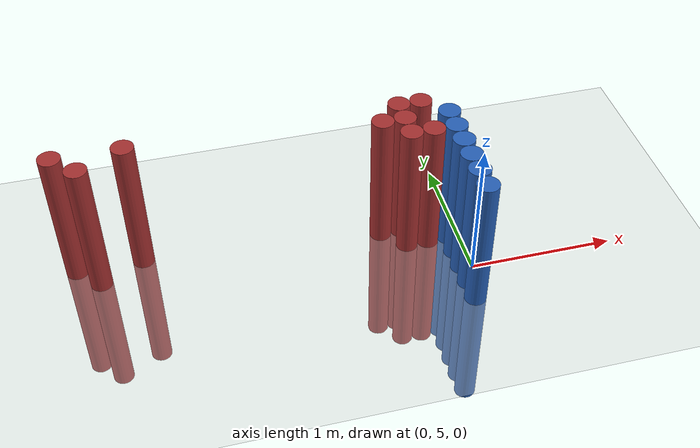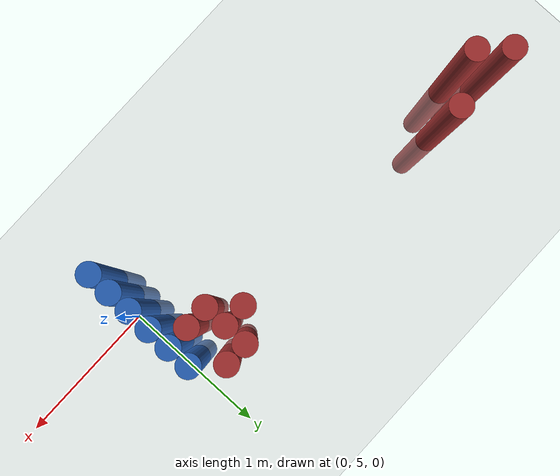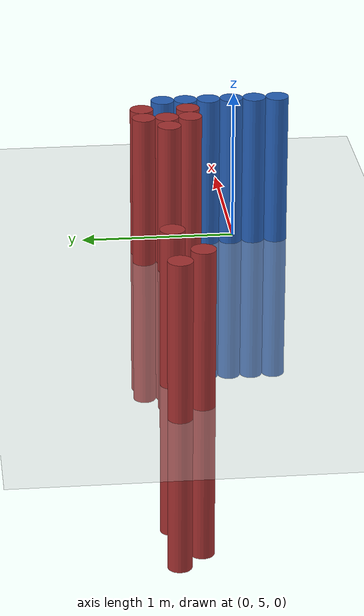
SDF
<sdf version="1.6">
 <world name="default">
  <model name="ground_plane">
   <static>1</static>
   <link name="link">
    <collision name="collision">
     <geometry><plane><normal>0 0 1</normal><size>100 100</size></plane></geometry>
     <surface><friction><ode><mu>100</mu><mu2>50</mu2></ode></friction></surface>
    </collision>
    <visual name="visual">
     <cast_shadows>0</cast_shadows>
     <geometry><plane><normal>0 0 1</normal><size>100 100</size></plane></geometry>
     <material>
      <script><uri>file://media/materials/scripts/gazebo.material</uri><name>Gazebo/Grey</name></script>
     </material>
    </visual>
   </link>
  </model>
  <model name="unit_cylinder_90">
   <static>1</static>
   <pose>-0.075000 4.725000 0.000000 0.000000 0.000000 0.000000</pose>
   <link name="link">
    <inertial>
     <mass>1</mass>
     <inertia><ixx>0.145833</ixx><ixy>0</ixy><ixz>0</ixz><iyy>0.145833</iyy><iyz>0</iyz><izz>0.125</izz></inertia>
    </inertial>
    <collision name="collision">
     <geometry><cylinder><radius>0.075000</radius><length>2</length></cylinder></geometry>
    </collision>
    <visual name="visual">
     <geometry><cylinder><radius>0.075000</radius><length>2</length></cylinder></geometry>
     <material>
      <ambient>0.152000 0.379000 0.720000 1</ambient>
      <diffuse>0.152000 0.379000 0.720000 1</diffuse>
     </material>
     <material>
      <script><name>Gazebo/Grey</name><uri>file://media/materials/scripts/gazebo.material</uri></script>
     </material>
    </visual>
   </link>
  </model>
  <model name="unit_cylinder_92">
   <static>1</static>
   <pose>-0.075000 4.875000 0.000000 0.000000 0.000000 0.000000</pose>
   <link name="link">
    <inertial>
     <mass>1</mass>
     <inertia><ixx>0.145833</ixx><ixy>0</ixy><ixz>0</ixz><iyy>0.145833</iyy><iyz>0</iyz><izz>0.125</izz></inertia>
    </inertial>
    <collision name="collision">
     <geometry><cylinder><radius>0.075000</radius><length>2</length></cylinder></geometry>
    </collision>
    <visual name="visual">
     <geometry><cylinder><radius>0.075000</radius><length>2</length></cylinder></geometry>
     <material>
      <ambient>0.152000 0.379000 0.720000 1</ambient>
      <diffuse>0.152000 0.379000 0.720000 1</diffuse>
     </material>
     <material>
      <script><name>Gazebo/Grey</name><uri>file://media/materials/scripts/gazebo.material</uri></script>
     </material>
    </visual>
   </link>
  </model>
  <model name="unit_cylinder_94">
   <static>1</static>
   <pose>-0.075000 5.025000 0.000000 0.000000 0.000000 0.000000</pose>
   <link name="link">
    <inertial>
     <mass>1</mass>
     <inertia><ixx>0.145833</ixx><ixy>0</ixy><ixz>0</ixz><iyy>0.145833</iyy><iyz>0</iyz><izz>0.125</izz></inertia>
    </inertial>
    <collision name="collision">
     <geometry><cylinder><radius>0.075000</radius><length>2</length></cylinder></geometry>
    </collision>
    <visual name="visual">
     <geometry><cylinder><radius>0.075000</radius><length>2</length></cylinder></geometry>
     <material>
      <ambient>0.152000 0.379000 0.720000 1</ambient>
      <diffuse>0.152000 0.379000 0.720000 1</diffuse>
     </material>
     <material>
      <script><name>Gazebo/Grey</name><uri>file://media/materials/scripts/gazebo.material</uri></script>
     </material>
    </visual>
   </link>
  </model>
  <model name="unit_cylinder_164">
   <static>1</static>
   <pose>-2.625000 5.625000 0.000000 0.000000 0.000000 0.000000</pose>
   <link name="link">
    <inertial>
     <mass>1</mass>
     <inertia><ixx>0.145833</ixx><ixy>0</ixy><ixz>0</ixz><iyy>0.145833</iyy><iyz>0</iyz><izz>0.125</izz></inertia>
    </inertial>
    <collision name="collision">
     <geometry><cylinder><radius>0.075000</radius><length>2</length></cylinder></geometry>
    </collision>
    <visual name="visual">
     <geometry><cylinder><radius>0.075000</radius><length>2</length></cylinder></geometry>
     <material>
      <ambient>0.648000 0.192000 0.192000 1</ambient>
      <diffuse>0.648000 0.192000 0.192000 1</diffuse>
     </material>
     <material>
      <script><name>Gazebo/Grey</name><uri>file://media/materials/scripts/gazebo.material</uri></script>
     </material>
    </visual>
   </link>
  </model>
  <model name="unit_cylinder_165">
   <static>1</static>
   <pose>-2.475000 5.475000 0.000000 0.000000 0.000000 0.000000</pose>
   <link name="link">
    <inertial>
     <mass>1</mass>
     <inertia><ixx>0.145833</ixx><ixy>0</ixy><ixz>0</ixz><iyy>0.145833</iyy><iyz>0</iyz><izz>0.125</izz></inertia>
    </inertial>
    <collision name="collision">
     <geometry><cylinder><radius>0.075000</radius><length>2</length></cylinder></geometry>
    </collision>
    <visual name="visual">
     <geometry><cylinder><radius>0.075000</radius><length>2</length></cylinder></geometry>
     <material>
      <ambient>0.648000 0.192000 0.192000 1</ambient>
      <diffuse>0.648000 0.192000 0.192000 1</diffuse>
     </material>
     <material>
      <script><name>Gazebo/Grey</name><uri>file://media/materials/scripts/gazebo.material</uri></script>
     </material>
    </visual>
   </link>
  </model>
  <model name="unit_cylinder_173">
   <static>1</static>
   <pose>-2.175000 5.625000 0.000000 0.000000 0.000000 0.000000</pose>
   <link name="link">
    <inertial>
     <mass>1</mass>
     <inertia><ixx>0.145833</ixx><ixy>0</ixy><ixz>0</ixz><iyy>0.145833</iyy><iyz>0</iyz><izz>0.125</izz></inertia>
    </inertial>
    <collision name="collision">
     <geometry><cylinder><radius>0.075000</radius><length>2</length></cylinder></geometry>
    </collision>
    <visual name="visual">
     <geometry><cylinder><radius>0.075000</radius><length>2</length></cylinder></geometry>
     <material>
      <ambient>0.648000 0.192000 0.192000 1</ambient>
      <diffuse>0.648000 0.192000 0.192000 1</diffuse>
     </material>
     <material>
      <script><name>Gazebo/Grey</name><uri>file://media/materials/scripts/gazebo.material</uri></script>
     </material>
    </visual>
   </link>
  </model>
  <model name="unit_cylinder_192">
   <static>1</static>
   <pose>-0.525000 5.475000 0.000000 0.000000 0.000000 0.000000</pose>
   <link name="link">
    <inertial>
     <mass>1</mass>
     <inertia><ixx>0.145833</ixx><ixy>0</ixy><ixz>0</ixz><iyy>0.145833</iyy><iyz>0</iyz><izz>0.125</izz></inertia>
    </inertial>
    <collision name="collision">
     <geometry><cylinder><radius>0.075000</radius><length>2</length></cylinder></geometry>
    </collision>
    <visual name="visual">
     <geometry><cylinder><radius>0.075000</radius><length>2</length></cylinder></geometry>
     <material>
      <ambient>0.648000 0.192000 0.192000 1</ambient>
      <diffuse>0.648000 0.192000 0.192000 1</diffuse>
     </material>
     <material>
      <script><name>Gazebo/Grey</name><uri>file://media/materials/scripts/gazebo.material</uri></script>
     </material>
    </visual>
   </link>
  </model>
  <model name="unit_cylinder_195">
   <static>1</static>
   <pose>-0.375000 5.325000 0.000000 0.000000 0.000000 0.000000</pose>
   <link name="link">
    <inertial>
     <mass>1</mass>
     <inertia><ixx>0.145833</ixx><ixy>0</ixy><ixz>0</ixz><iyy>0.145833</iyy><iyz>0</iyz><izz>0.125</izz></inertia>
    </inertial>
    <collision name="collision">
     <geometry><cylinder><radius>0.075000</radius><length>2</length></cylinder></geometry>
    </collision>
    <visual name="visual">
     <geometry><cylinder><radius>0.075000</radius><length>2</length></cylinder></geometry>
     <material>
      <ambient>0.648000 0.192000 0.192000 1</ambient>
      <diffuse>0.648000 0.192000 0.192000 1</diffuse>
     </material>
     <material>
      <script><name>Gazebo/Grey</name><uri>file://media/materials/scripts/gazebo.material</uri></script>
     </material>
    </visual>
   </link>
  </model>
  <model name="unit_cylinder_196">
   <static>1</static>
   <pose>-0.375000 5.475000 0.000000 0.000000 0.000000 0.000000</pose>
   <link name="link">
    <inertial>
     <mass>1</mass>
     <inertia><ixx>0.145833</ixx><ixy>0</ixy><ixz>0</ixz><iyy>0.145833</iyy><iyz>0</iyz><izz>0.125</izz></inertia>
    </inertial>
    <collision name="collision">
     <geometry><cylinder><radius>0.075000</radius><length>2</length></cylinder></geometry>
    </collision>
    <visual name="visual">
     <geometry><cylinder><radius>0.075000</radius><length>2</length></cylinder></geometry>
     <material>
      <ambient>0.648000 0.192000 0.192000 1</ambient>
      <diffuse>0.648000 0.192000 0.192000 1</diffuse>
     </material>
     <material>
      <script><name>Gazebo/Grey</name><uri>file://media/materials/scripts/gazebo.material</uri></script>
     </material>
    </visual>
   </link>
  </model>
  <model name="unit_cylinder_197">
   <static>1</static>
   <pose>-0.375000 5.625000 0.000000 0.000000 0.000000 0.000000</pose>
   <link name="link">
    <inertial>
     <mass>1</mass>
     <inertia><ixx>0.145833</ixx><ixy>0</ixy><ixz>0</ixz><iyy>0.145833</iyy><iyz>0</iyz><izz>0.125</izz></inertia>
    </inertial>
    <collision name="collision">
     <geometry><cylinder><radius>0.075000</radius><length>2</length></cylinder></geometry>
    </collision>
    <visual name="visual">
     <geometry><cylinder><radius>0.075000</radius><length>2</length></cylinder></geometry>
     <material>
      <ambient>0.648000 0.192000 0.192000 1</ambient>
      <diffuse>0.648000 0.192000 0.192000 1</diffuse>
     </material>
     <material>
      <script><name>Gazebo/Grey</name><uri>file://media/materials/scripts/gazebo.material</uri></script>
     </material>
    </visual>
   </link>
  </model>
  <model name="unit_cylinder_198">
   <static>1</static>
   <pose>-0.225000 5.325000 0.000000 0.000000 0.000000 0.000000</pose>
   <link name="link">
    <inertial>
     <mass>1</mass>
     <inertia><ixx>0.145833</ixx><ixy>0</ixy><ixz>0</ixz><iyy>0.145833</iyy><iyz>0</iyz><izz>0.125</izz></inertia>
    </inertial>
    <collision name="collision">
     <geometry><cylinder><radius>0.075000</radius><length>2</length></cylinder></geometry>
    </collision>
    <visual name="visual">
     <geometry><cylinder><radius>0.075000</radius><length>2</length></cylinder></geometry>
     <material>
      <ambient>0.648000 0.192000 0.192000 1</ambient>
      <diffuse>0.648000 0.192000 0.192000 1</diffuse>
     </material>
     <material>
      <script><name>Gazebo/Grey</name><uri>file://media/materials/scripts/gazebo.material</uri></script>
     </material>
    </visual>
   </link>
  </model>
  <model name="unit_cylinder_199">
   <static>1</static>
   <pose>-0.225000 5.625000 0.000000 0.000000 0.000000 0.000000</pose>
   <link name="link">
    <inertial>
     <mass>1</mass>
     <inertia><ixx>0.145833</ixx><ixy>0</ixy><ixz>0</ixz><iyy>0.145833</iyy><iyz>0</iyz><izz>0.125</izz></inertia>
    </inertial>
    <collision name="collision">
     <geometry><cylinder><radius>0.075000</radius><length>2</length></cylinder></geometry>
    </collision>
    <visual name="visual">
     <geometry><cylinder><radius>0.075000</radius><length>2</length></cylinder></geometry>
     <material>
      <ambient>0.648000 0.192000 0.192000 1</ambient>
      <diffuse>0.648000 0.192000 0.192000 1</diffuse>
     </material>
     <material>
      <script><name>Gazebo/Grey</name><uri>file://media/materials/scripts/gazebo.material</uri></script>
     </material>
    </visual>
   </link>
  </model>
  <model name="unit_cylinder_207">
   <static>1</static>
   <pose>-0.075000 5.175000 0.000000 0.000000 0.000000 0.000000</pose>
   <link name="link">
    <inertial>
     <mass>1</mass>
     <inertia><ixx>0.145833</ixx><ixy>0</ixy><ixz>0</ixz><iyy>0.145833</iyy><iyz>0</iyz><izz>0.125</izz></inertia>
    </inertial>
    <collision name="collision">
     <geometry><cylinder><radius>0.075000</radius><length>2</length></cylinder></geometry>
    </collision>
    <visual name="visual">
     <geometry><cylinder><radius>0.075000</radius><length>2</length></cylinder></geometry>
     <material>
      <ambient>0.152000 0.379000 0.720000 1</ambient>
      <diffuse>0.152000 0.379000 0.720000 1</diffuse>
     </material>
     <material>
      <script><name>Gazebo/Grey</name><uri>file://media/materials/scripts/gazebo.material</uri></script>
     </material>
    </visual>
   </link>
  </model>
  <model name="unit_cylinder_208">
   <static>1</static>
   <pose>-0.075000 5.325000 0.000000 0.000000 0.000000 0.000000</pose>
   <link name="link">
    <inertial>
     <mass>1</mass>
     <inertia><ixx>0.145833</ixx><ixy>0</ixy><ixz>0</ixz><iyy>0.145833</iyy><iyz>0</iyz><izz>0.125</izz></inertia>
    </inertial>
    <collision name="collision">
     <geometry><cylinder><radius>0.075000</radius><length>2</length></cylinder></geometry>
    </collision>
    <visual name="visual">
     <geometry><cylinder><radius>0.075000</radius><length>2</length></cylinder></geometry>
     <material>
      <ambient>0.152000 0.379000 0.720000 1</ambient>
      <diffuse>0.152000 0.379000 0.720000 1</diffuse>
     </material>
     <material>
      <script><name>Gazebo/Grey</name><uri>file://media/materials/scripts/gazebo.material</uri></script>
     </material>
    </visual>
   </link>
  </model>
  <model name="unit_cylinder_209">
   <static>1</static>
   <pose>-0.075000 5.475000 0.000000 0.000000 0.000000 0.000000</pose>
   <link name="link">
    <inertial>
     <mass>1</mass>
     <inertia><ixx>0.145833</ixx><ixy>0</ixy><ixz>0</ixz><iyy>0.145833</iyy><iyz>0</iyz><izz>0.125</izz></inertia>
    </inertial>
    <collision name="collision">
     <geometry><cylinder><radius>0.075000</radius><length>2</length></cylinder></geometry>
    </collision>
    <visual name="visual">
     <geometry><cylinder><radius>0.075000</radius><length>2</length></cylinder></geometry>
     <material>
      <ambient>0.152000 0.379000 0.720000 1</ambient>
      <diffuse>0.152000 0.379000 0.720000 1</diffuse>
     </material>
     <material>
      <script><name>Gazebo/Grey</name><uri>file://media/materials/scripts/gazebo.material</uri></script>
     </material>
    </visual>
   </link>
  </model>
 </world>
</sdf>
